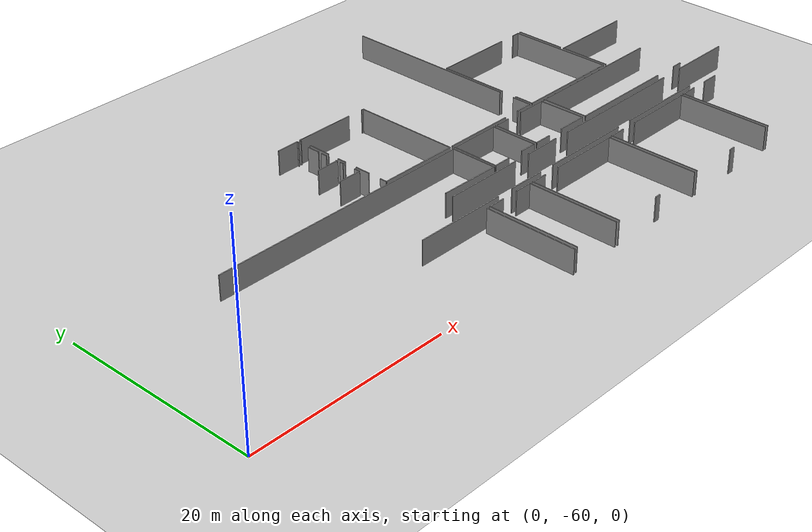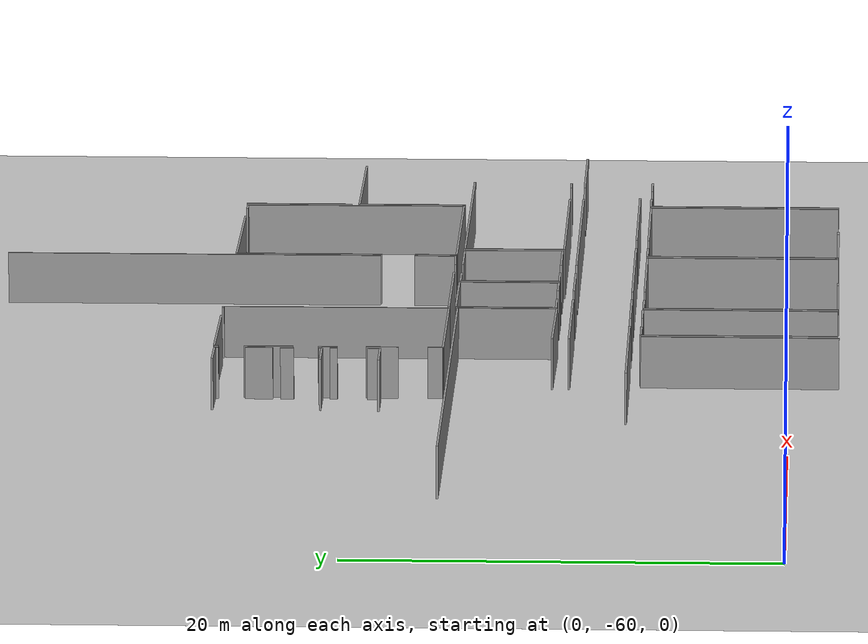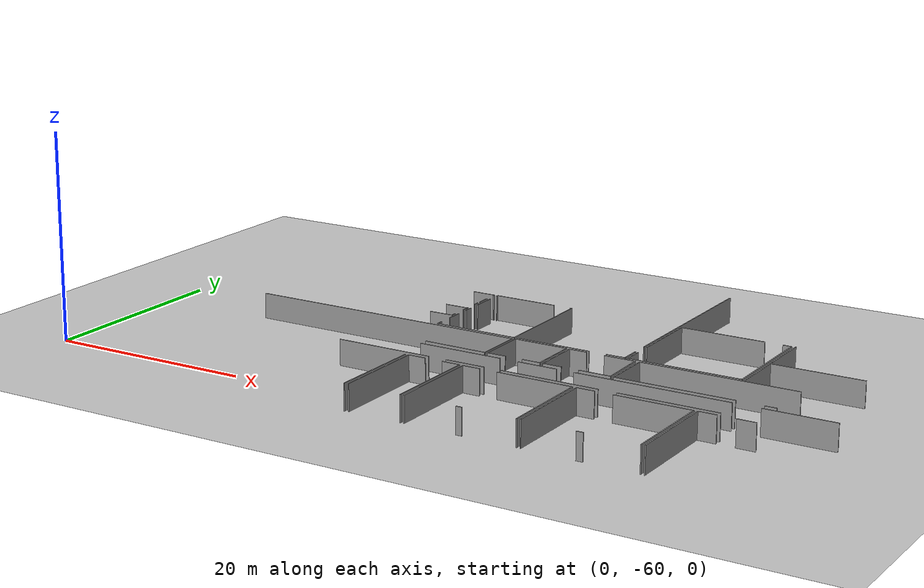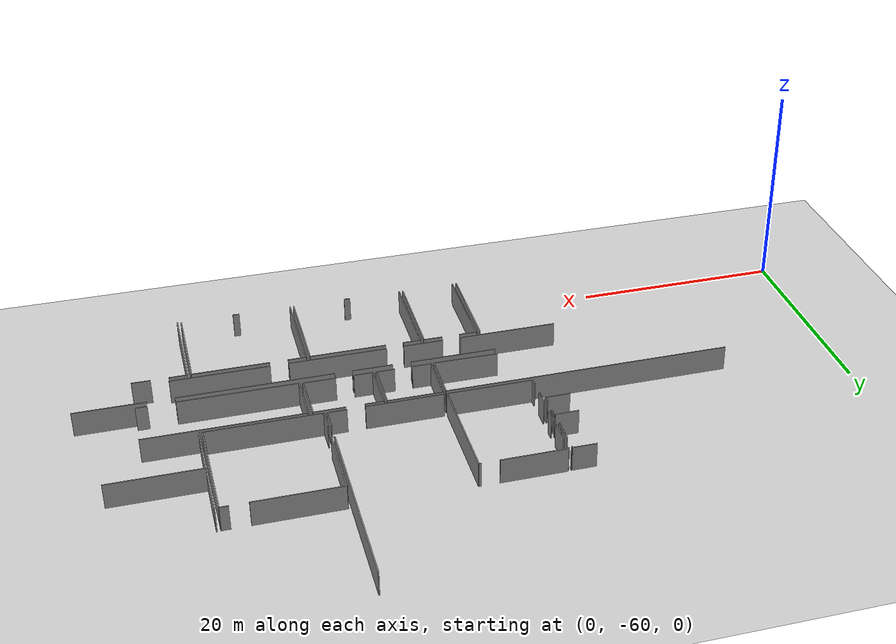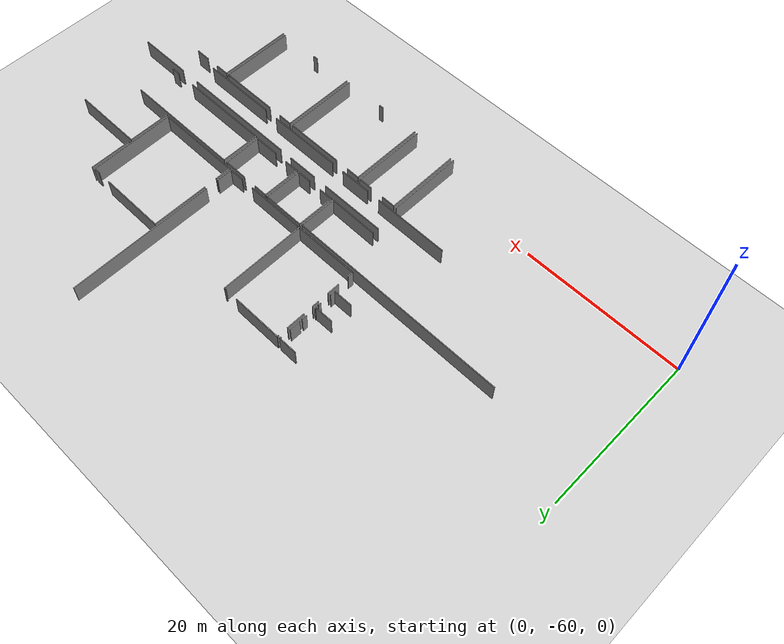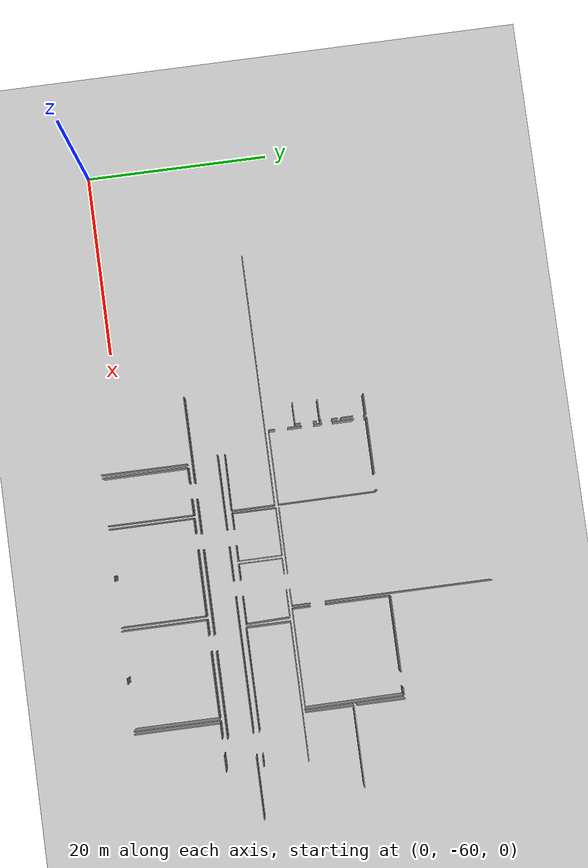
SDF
<sdf version="1.6">
 <world name="default">
  <model name="ground_plane">
   <static>1</static>
   <link name="link">
    <collision name="collision">
     <geometry><plane><normal>0 0 1</normal><size>100 100</size></plane></geometry>
     <surface><friction><ode><mu>100</mu><mu2>50</mu2></ode></friction></surface>
    </collision>
    <visual name="visual">
     <cast_shadows>0</cast_shadows>
     <geometry><plane><normal>0 0 1</normal><size>100 100</size></plane></geometry>
     <material>
      <script><uri>file://media/materials/scripts/gazebo.material</uri><name>Gazebo/Grey</name></script>
     </material>
    </visual>
   </link>
  </model>
  <model name="0510045904_A_40_1_102">
   <static>1</static>
   <link name="Wall_488">
    <collision name="Wall_488_Collision">
     <geometry><box><size>8.20140414133 0.1 2.5</size></box></geometry>
     <pose>4.10070207066 0 1.25 0 0 0</pose>
    </collision>
    <visual name="Wall_488_Visual">
     <pose>4.10070207066 0 1.25 0 0 0</pose>
     <geometry><box><size>8.20140414133 0.1 2.5</size></box></geometry>
     <material>
      <script><uri>file://media/materials/scripts/gazebo.material</uri><name>Gazebo/Grey</name></script>
      <ambient>1 1 1 1</ambient>
     </material>
    </visual>
    <pose>123.418944482 -106.083004304 0 0 0 3.14159265359</pose>
   </link>
   <link name="Wall_489">
    <collision name="Wall_489_Collision">
     <geometry><box><size>0.710957634542 0.1 2.5</size></box></geometry>
     <pose>0.355478817271 0 1.25 0 0 0</pose>
    </collision>
    <visual name="Wall_489_Visual">
     <pose>0.355478817271 0 1.25 0 0 0</pose>
     <geometry><box><size>0.710957634542 0.1 2.5</size></box></geometry>
     <material>
      <script><uri>file://media/materials/scripts/gazebo.material</uri><name>Gazebo/Grey</name></script>
      <ambient>1 1 1 1</ambient>
     </material>
    </visual>
    <pose>115.21754034 -106.083004304 0 0 0 1.57079632679</pose>
   </link>
   <link name="Wall_490">
    <collision name="Wall_490_Collision">
     <geometry><box><size>1.54887198954 0.1 2.5</size></box></geometry>
     <pose>0.774435994769 0 1.25 0 0 0</pose>
    </collision>
    <visual name="Wall_490_Visual">
     <pose>0.774435994769 0 1.25 0 0 0</pose>
     <geometry><box><size>1.54887198954 0.1 2.5</size></box></geometry>
     <material>
      <script><uri>file://media/materials/scripts/gazebo.material</uri><name>Gazebo/Grey</name></script>
      <ambient>1 1 1 1</ambient>
     </material>
    </visual>
    <pose>115.21754034 -103.975522744 0 0 0 1.57079632679</pose>
   </link>
   <link name="Wall_491">
    <collision name="Wall_491_Collision">
     <geometry><box><size>0.905201416837 0.1 2.5</size></box></geometry>
     <pose>0.452600708418 0 1.25 0 0 0</pose>
    </collision>
    <visual name="Wall_491_Visual">
     <pose>0.452600708418 0 1.25 0 0 0</pose>
     <geometry><box><size>0.905201416837 0.1 2.5</size></box></geometry>
     <material>
      <script><uri>file://media/materials/scripts/gazebo.material</uri><name>Gazebo/Grey</name></script>
      <ambient>1 1 1 1</ambient>
     </material>
    </visual>
    <pose>115.21754034 -101.077608643 0 0 0 1.57079632679</pose>
   </link>
   <link name="Wall_492">
    <collision name="Wall_492_Collision">
     <geometry><box><size>2.34032018485 0.1 2.5</size></box></geometry>
     <pose>1.17016009242 0 1.25 0 0 0</pose>
    </collision>
    <visual name="Wall_492_Visual">
     <pose>1.17016009242 0 1.25 0 0 0</pose>
     <geometry><box><size>2.34032018485 0.1 2.5</size></box></geometry>
     <material>
      <script><uri>file://media/materials/scripts/gazebo.material</uri><name>Gazebo/Grey</name></script>
      <ambient>1 1 1 1</ambient>
     </material>
    </visual>
    <pose>115.21754034 -98.9800297079 0 0 0 1.57079632679</pose>
   </link>
   <link name="Wall_493">
    <collision name="Wall_493_Collision">
     <geometry><box><size>0.191958561326 0.1 2.5</size></box></geometry>
     <pose>0.0959792806632 0 1.25 0 0 0</pose>
    </collision>
    <visual name="Wall_493_Visual">
     <pose>0.0959792806632 0 1.25 0 0 0</pose>
     <geometry><box><size>0.191958561326 0.1 2.5</size></box></geometry>
     <material>
      <script><uri>file://media/materials/scripts/gazebo.material</uri><name>Gazebo/Grey</name></script>
      <ambient>1 1 1 1</ambient>
     </material>
    </visual>
    <pose>115.21754034 -95.4214328335 0 0 0 1.57079632679</pose>
   </link>
   <link name="Wall_494">
    <collision name="Wall_494_Collision">
     <geometry><box><size>6.25896631838 0.1 2.5</size></box></geometry>
     <pose>3.12948315919 0 1.25 0 0 0</pose>
    </collision>
    <visual name="Wall_494_Visual">
     <pose>3.12948315919 0 1.25 0 0 0</pose>
     <geometry><box><size>6.25896631838 0.1 2.5</size></box></geometry>
     <material>
      <script><uri>file://media/materials/scripts/gazebo.material</uri><name>Gazebo/Grey</name></script>
      <ambient>1 1 1 1</ambient>
     </material>
    </visual>
    <pose>115.21754034 -95.2294742722 0 0 0 0.0</pose>
   </link>
   <link name="Wall_495">
    <collision name="Wall_495_Collision">
     <geometry><box><size>0.211002069395 0.1 2.5</size></box></geometry>
     <pose>0.105501034697 0 1.25 0 0 0</pose>
    </collision>
    <visual name="Wall_495_Visual">
     <pose>0.105501034697 0 1.25 0 0 0</pose>
     <geometry><box><size>0.211002069395 0.1 2.5</size></box></geometry>
     <material>
      <script><uri>file://media/materials/scripts/gazebo.material</uri><name>Gazebo/Grey</name></script>
      <ambient>1 1 1 1</ambient>
     </material>
    </visual>
    <pose>123.169855396 -95.2294742722 0 0 0 0.0</pose>
   </link>
   <link name="Wall_496">
    <collision name="Wall_496_Collision">
     <geometry><box><size>10.8535968585 0.1 2.5</size></box></geometry>
     <pose>5.42679842927 0 1.25 0 0 0</pose>
    </collision>
    <visual name="Wall_496_Visual">
     <pose>5.42679842927 0 1.25 0 0 0</pose>
     <geometry><box><size>10.8535968585 0.1 2.5</size></box></geometry>
     <material>
      <script><uri>file://media/materials/scripts/gazebo.material</uri><name>Gazebo/Grey</name></script>
      <ambient>1 1 1 1</ambient>
     </material>
    </visual>
    <pose>123.380857466 -95.2294742722 0 0 0 -1.56728715884</pose>
   </link>
   <link name="Wall_499">
    <collision name="Wall_499_Collision">
     <geometry><box><size>0.375284065662 0.1 2.5</size></box></geometry>
     <pose>0.187642032831 0 1.25 0 0 0</pose>
    </collision>
    <visual name="Wall_499_Visual">
     <pose>0.187642032831 0 1.25 0 0 0</pose>
     <geometry><box><size>0.375284065662 0.1 2.5</size></box></geometry>
     <material>
      <script><uri>file://media/materials/scripts/gazebo.material</uri><name>Gazebo/Grey</name></script>
      <ambient>1 1 1 1</ambient>
     </material>
    </visual>
    <pose>114.913859865 -100.724415047 0 0 0 -1.57079632679</pose>
   </link>
   <link name="Wall_500">
    <collision name="Wall_500_Collision">
     <geometry><box><size>0.617517488288 0.1 2.5</size></box></geometry>
     <pose>0.308758744144 0 1.25 0 0 0</pose>
    </collision>
    <visual name="Wall_500_Visual">
     <pose>0.308758744144 0 1.25 0 0 0</pose>
     <geometry><box><size>0.617517488288 0.1 2.5</size></box></geometry>
     <material>
      <script><uri>file://media/materials/scripts/gazebo.material</uri><name>Gazebo/Grey</name></script>
      <ambient>1 1 1 1</ambient>
     </material>
    </visual>
    <pose>114.913859865 -102.496984778 0 0 0 -1.57079632679</pose>
   </link>
   <link name="Wall_501">
    <collision name="Wall_501_Collision">
     <geometry><box><size>2.38455824056 0.1 2.5</size></box></geometry>
     <pose>1.19227912028 0 1.25 0 0 0</pose>
    </collision>
    <visual name="Wall_501_Visual">
     <pose>1.19227912028 0 1.25 0 0 0</pose>
     <geometry><box><size>2.38455824056 0.1 2.5</size></box></geometry>
     <material>
      <script><uri>file://media/materials/scripts/gazebo.material</uri><name>Gazebo/Grey</name></script>
      <ambient>1 1 1 1</ambient>
     </material>
    </visual>
    <pose>114.913859865 -103.114502266 0 0 0 -3.13467124351</pose>
   </link>
   <link name="Wall_507">
    <collision name="Wall_507_Collision">
     <geometry><box><size>1.32466642122 0.1 2.5</size></box></geometry>
     <pose>0.662333210609 0 1.25 0 0 0</pose>
    </collision>
    <visual name="Wall_507_Visual">
     <pose>0.662333210609 0 1.25 0 0 0</pose>
     <geometry><box><size>1.32466642122 0.1 2.5</size></box></geometry>
     <material>
      <script><uri>file://media/materials/scripts/gazebo.material</uri><name>Gazebo/Grey</name></script>
      <ambient>1 1 1 1</ambient>
     </material>
    </visual>
    <pose>114.891769396 -98.0306473523 0 0 0 1.57079632679</pose>
   </link>
   <link name="Wall_508">
    <collision name="Wall_508_Collision">
     <geometry><box><size>0.191958561326 0.1 2.5</size></box></geometry>
     <pose>0.0959792806632 0 1.25 0 0 0</pose>
    </collision>
    <visual name="Wall_508_Visual">
     <pose>0.0959792806632 0 1.25 0 0 0</pose>
     <geometry><box><size>0.191958561326 0.1 2.5</size></box></geometry>
     <material>
      <script><uri>file://media/materials/scripts/gazebo.material</uri><name>Gazebo/Grey</name></script>
      <ambient>1 1 1 1</ambient>
     </material>
    </visual>
    <pose>114.891769396 -95.4597737631 0 0 0 1.57079632679</pose>
   </link>
   <link name="Wall_509">
    <collision name="Wall_509_Collision">
     <geometry><box><size>2.30096360151 0.1 2.5</size></box></geometry>
     <pose>1.15048180075 0 1.25 0 0 0</pose>
    </collision>
    <visual name="Wall_509_Visual">
     <pose>1.15048180075 0 1.25 0 0 0</pose>
     <geometry><box><size>2.30096360151 0.1 2.5</size></box></geometry>
     <material>
      <script><uri>file://media/materials/scripts/gazebo.material</uri><name>Gazebo/Grey</name></script>
      <ambient>1 1 1 1</ambient>
     </material>
    </visual>
    <pose>114.891769396 -95.2678152018 0 0 0 3.14159265359</pose>
   </link>
   <link name="Wall_514">
    <collision name="Wall_514_Collision">
     <geometry><box><size>0.643924486143 0.1 2.5</size></box></geometry>
     <pose>0.321962243071 0 1.25 0 0 0</pose>
    </collision>
    <visual name="Wall_514_Visual">
     <pose>0.321962243071 0 1.25 0 0 0</pose>
     <geometry><box><size>0.643924486143 0.1 2.5</size></box></geometry>
     <material>
      <script><uri>file://media/materials/scripts/gazebo.material</uri><name>Gazebo/Grey</name></script>
      <ambient>1 1 1 1</ambient>
     </material>
    </visual>
    <pose>114.890245915 -98.3871418234 0 0 0 -1.57079632679</pose>
   </link>
   <link name="Wall_515">
    <collision name="Wall_515_Collision">
     <geometry><box><size>0.153617631749 0.1 2.5</size></box></geometry>
     <pose>0.0768088158747 0 1.25 0 0 0</pose>
    </collision>
    <visual name="Wall_515_Visual">
     <pose>0.0768088158747 0 1.25 0 0 0</pose>
     <geometry><box><size>0.153617631749 0.1 2.5</size></box></geometry>
     <material>
      <script><uri>file://media/materials/scripts/gazebo.material</uri><name>Gazebo/Grey</name></script>
      <ambient>1 1 1 1</ambient>
     </material>
    </visual>
    <pose>114.890245915 -100.203384666 0 0 0 -1.57079632679</pose>
   </link>
   <link name="Wall_516">
    <collision name="Wall_516_Collision">
     <geometry><box><size>2.31013663599 0.1 2.5</size></box></geometry>
     <pose>1.155068318 0 1.25 0 0 0</pose>
    </collision>
    <visual name="Wall_516_Visual">
     <pose>1.155068318 0 1.25 0 0 0</pose>
     <geometry><box><size>2.31013663599 0.1 2.5</size></box></geometry>
     <material>
      <script><uri>file://media/materials/scripts/gazebo.material</uri><name>Gazebo/Grey</name></script>
      <ambient>1 1 1 1</ambient>
     </material>
    </visual>
    <pose>114.890245915 -100.357002298 0 0 0 -3.13631681773</pose>
   </link>
   <link name="Wall_542">
    <collision name="Wall_542_Collision">
     <geometry><box><size>2.0148031536 0.1 2.5</size></box></geometry>
     <pose>1.0074015768 0 1.25 0 0 0</pose>
    </collision>
    <visual name="Wall_542_Visual">
     <pose>1.0074015768 0 1.25 0 0 0</pose>
     <geometry><box><size>2.0148031536 0.1 2.5</size></box></geometry>
     <material>
      <script><uri>file://media/materials/scripts/gazebo.material</uri><name>Gazebo/Grey</name></script>
      <ambient>1 1 1 1</ambient>
     </material>
    </visual>
    <pose>134.616527226 -106.02587378 0 0 0 1.57079632679</pose>
   </link>
   <link name="Wall_543">
    <collision name="Wall_543_Collision">
     <geometry><box><size>18.3013190803 0.1 2.5</size></box></geometry>
     <pose>9.15065954016 0 1.25 0 0 0</pose>
    </collision>
    <visual name="Wall_543_Visual">
     <pose>9.15065954016 0 1.25 0 0 0</pose>
     <geometry><box><size>18.3013190803 0.1 2.5</size></box></geometry>
     <material>
      <script><uri>file://media/materials/scripts/gazebo.material</uri><name>Gazebo/Grey</name></script>
      <ambient>1 1 1 1</ambient>
     </material>
    </visual>
    <pose>134.616527226 -102.365711529 0 0 0 1.57079632679</pose>
   </link>
   <link name="Wall_547">
    <collision name="Wall_547_Collision">
     <geometry><box><size>7.35257150837 0.1 2.5</size></box></geometry>
     <pose>3.67628575419 0 1.25 0 0 0</pose>
    </collision>
    <visual name="Wall_547_Visual">
     <pose>3.67628575419 0 1.25 0 0 0</pose>
     <geometry><box><size>7.35257150837 0.1 2.5</size></box></geometry>
     <material>
      <script><uri>file://media/materials/scripts/gazebo.material</uri><name>Gazebo/Grey</name></script>
      <ambient>1 1 1 1</ambient>
     </material>
    </visual>
    <pose>123.723640611 -106.067515584 0 0 0 0.0</pose>
   </link>
   <link name="Wall_548">
    <collision name="Wall_548_Collision">
     <geometry><box><size>1.82865096692 0.1 2.5</size></box></geometry>
     <pose>0.914325483461 0 1.25 0 0 0</pose>
    </collision>
    <visual name="Wall_548_Visual">
     <pose>0.914325483461 0 1.25 0 0 0</pose>
     <geometry><box><size>1.82865096692 0.1 2.5</size></box></geometry>
     <material>
      <script><uri>file://media/materials/scripts/gazebo.material</uri><name>Gazebo/Grey</name></script>
      <ambient>1 1 1 1</ambient>
     </material>
    </visual>
    <pose>132.788350451 -106.067515584 0 0 0 0.0227738397603</pose>
   </link>
   <link name="Wall_549">
    <collision name="Wall_549_Collision">
     <geometry><box><size>3.09774397908 0.1 2.5</size></box></geometry>
     <pose>1.54887198954 0 1.25 0 0 0</pose>
    </collision>
    <visual name="Wall_549_Visual">
     <pose>1.54887198954 0 1.25 0 0 0</pose>
     <geometry><box><size>3.09774397908 0.1 2.5</size></box></geometry>
     <material>
      <script><uri>file://media/materials/scripts/gazebo.material</uri><name>Gazebo/Grey</name></script>
      <ambient>1 1 1 1</ambient>
     </material>
    </visual>
    <pose>135.936877119 -111.237447154 0 0 0 3.14159265359</pose>
   </link>
   <link name="Wall_550">
    <collision name="Wall_550_Collision">
     <geometry><box><size>1.82081328475 0.1 2.5</size></box></geometry>
     <pose>0.910406642376 0 1.25 0 0 0</pose>
    </collision>
    <visual name="Wall_550_Visual">
     <pose>0.910406642376 0 1.25 0 0 0</pose>
     <geometry><box><size>1.82081328475 0.1 2.5</size></box></geometry>
     <material>
      <script><uri>file://media/materials/scripts/gazebo.material</uri><name>Gazebo/Grey</name></script>
      <ambient>1 1 1 1</ambient>
     </material>
    </visual>
    <pose>131.127756548 -111.237447154 0 0 0 3.14159265359</pose>
   </link>
   <link name="Wall_551">
    <collision name="Wall_551_Collision">
     <geometry><box><size>4.79896403316 0.1 2.5</size></box></geometry>
     <pose>2.39948201658 0 1.25 0 0 0</pose>
    </collision>
    <visual name="Wall_551_Visual">
     <pose>2.39948201658 0 1.25 0 0 0</pose>
     <geometry><box><size>4.79896403316 0.1 2.5</size></box></geometry>
     <material>
      <script><uri>file://media/materials/scripts/gazebo.material</uri><name>Gazebo/Grey</name></script>
      <ambient>1 1 1 1</ambient>
     </material>
    </visual>
    <pose>129.306943263 -111.237447154 0 0 0 1.57079632679</pose>
   </link>
   <link name="Wall_552">
    <collision name="Wall_552_Collision">
     <geometry><box><size>1.72940444602 0.1 2.5</size></box></geometry>
     <pose>0.864702223012 0 1.25 0 0 0</pose>
    </collision>
    <visual name="Wall_552_Visual">
     <pose>0.864702223012 0 1.25 0 0 0</pose>
     <geometry><box><size>1.72940444602 0.1 2.5</size></box></geometry>
     <material>
      <script><uri>file://media/materials/scripts/gazebo.material</uri><name>Gazebo/Grey</name></script>
      <ambient>1 1 1 1</ambient>
     </material>
    </visual>
    <pose>129.306943263 -106.438483121 0 0 0 0.0</pose>
   </link>
   <link name="Wall_553">
    <collision name="Wall_553_Collision">
     <geometry><box><size>3.02207777369 0.1 2.5</size></box></geometry>
     <pose>1.51103888684 0 1.25 0 0 0</pose>
    </collision>
    <visual name="Wall_553_Visual">
     <pose>1.51103888684 0 1.25 0 0 0</pose>
     <geometry><box><size>3.02207777369 0.1 2.5</size></box></geometry>
     <material>
      <script><uri>file://media/materials/scripts/gazebo.material</uri><name>Gazebo/Grey</name></script>
      <ambient>1 1 1 1</ambient>
     </material>
    </visual>
    <pose>132.795967855 -106.438483121 0 0 0 0.0</pose>
   </link>
   <link name="Wall_554">
    <collision name="Wall_554_Collision">
     <geometry><box><size>4.80043505473 0.1 2.5</size></box></geometry>
     <pose>2.40021752736 0 1.25 0 0 0</pose>
    </collision>
    <visual name="Wall_554_Visual">
     <pose>2.40021752736 0 1.25 0 0 0</pose>
     <geometry><box><size>4.80043505473 0.1 2.5</size></box></geometry>
     <material>
      <script><uri>file://media/materials/scripts/gazebo.material</uri><name>Gazebo/Grey</name></script>
      <ambient>1 1 1 1</ambient>
     </material>
    </visual>
    <pose>135.818045628 -106.438483121 0 0 0 -1.54603948111</pose>
   </link>
   <link name="Wall_555">
    <collision name="Wall_555_Collision">
     <geometry><box><size>10.8984727107 0.1 2.5</size></box></geometry>
     <pose>5.44923635533 0 1.25 0 0 0</pose>
    </collision>
    <visual name="Wall_555_Visual">
     <pose>5.44923635533 0 1.25 0 0 0</pose>
     <geometry><box><size>10.8984727107 0.1 2.5</size></box></geometry>
     <material>
      <script><uri>file://media/materials/scripts/gazebo.material</uri><name>Gazebo/Grey</name></script>
      <ambient>1 1 1 1</ambient>
     </material>
    </visual>
    <pose>145.809793441 -106.066246017 0 0 0 3.14159265359</pose>
   </link>
   <link name="Wall_556">
    <collision name="Wall_556_Collision">
     <geometry><box><size>2.02165881651 0.1 2.5</size></box></geometry>
     <pose>1.01082940825 0 1.25 0 0 0</pose>
    </collision>
    <visual name="Wall_556_Visual">
     <pose>1.01082940825 0 1.25 0 0 0</pose>
     <geometry><box><size>2.02165881651 0.1 2.5</size></box></geometry>
     <material>
      <script><uri>file://media/materials/scripts/gazebo.material</uri><name>Gazebo/Grey</name></script>
      <ambient>1 1 1 1</ambient>
     </material>
    </visual>
    <pose>134.911320731 -106.066246017 0 0 0 1.57079632679</pose>
   </link>
   <link name="Wall_557">
    <collision name="Wall_557_Collision">
     <geometry><box><size>7.13141290134 0.1 2.5</size></box></geometry>
     <pose>3.56570645067 0 1.25 0 0 0</pose>
    </collision>
    <visual name="Wall_557_Visual">
     <pose>3.56570645067 0 1.25 0 0 0</pose>
     <geometry><box><size>7.13141290134 0.1 2.5</size></box></geometry>
     <material>
      <script><uri>file://media/materials/scripts/gazebo.material</uri><name>Gazebo/Grey</name></script>
      <ambient>1 1 1 1</ambient>
     </material>
    </visual>
    <pose>134.911320731 -102.399228103 0 0 0 1.57079632679</pose>
   </link>
   <link name="Wall_558">
    <collision name="Wall_558_Collision">
     <geometry><box><size>8.26437467467 0.1 2.5</size></box></geometry>
     <pose>4.13218733734 0 1.25 0 0 0</pose>
    </collision>
    <visual name="Wall_558_Visual">
     <pose>4.13218733734 0 1.25 0 0 0</pose>
     <geometry><box><size>8.26437467467 0.1 2.5</size></box></geometry>
     <material>
      <script><uri>file://media/materials/scripts/gazebo.material</uri><name>Gazebo/Grey</name></script>
      <ambient>1 1 1 1</ambient>
     </material>
    </visual>
    <pose>134.911320731 -95.2678152018 0 0 0 0.0</pose>
   </link>
   <link name="Wall_559">
    <collision name="Wall_559_Collision">
     <geometry><box><size>0.817093452842 0.1 2.5</size></box></geometry>
     <pose>0.408546726421 0 1.25 0 0 0</pose>
    </collision>
    <visual name="Wall_559_Visual">
     <pose>0.408546726421 0 1.25 0 0 0</pose>
     <geometry><box><size>0.817093452842 0.1 2.5</size></box></geometry>
     <material>
      <script><uri>file://media/materials/scripts/gazebo.material</uri><name>Gazebo/Grey</name></script>
      <ambient>1 1 1 1</ambient>
     </material>
    </visual>
    <pose>144.897736362 -95.2678152018 0 0 0 0.0</pose>
   </link>
   <link name="Wall_560">
    <collision name="Wall_560_Collision">
     <geometry><box><size>10.7988483717 0.1 2.5</size></box></geometry>
     <pose>5.39942418586 0 1.25 0 0 0</pose>
    </collision>
    <visual name="Wall_560_Visual">
     <pose>5.39942418586 0 1.25 0 0 0</pose>
     <geometry><box><size>10.7988483717 0.1 2.5</size></box></geometry>
     <material>
      <script><uri>file://media/materials/scripts/gazebo.material</uri><name>Gazebo/Grey</name></script>
      <ambient>1 1 1 1</ambient>
     </material>
    </visual>
    <pose>145.714829815 -95.2678152018 0 0 0 -1.56200234732</pose>
   </link>
   <link name="Wall_587">
    <collision name="Wall_587_Collision">
     <geometry><box><size>5.27987609024 0.1 2.5</size></box></geometry>
     <pose>2.63993804512 0 1.25 0 0 0</pose>
    </collision>
    <visual name="Wall_587_Visual">
     <pose>2.63993804512 0 1.25 0 0 0</pose>
     <geometry><box><size>5.27987609024 0.1 2.5</size></box></geometry>
     <material>
      <script><uri>file://media/materials/scripts/gazebo.material</uri><name>Gazebo/Grey</name></script>
      <ambient>1 1 1 1</ambient>
     </material>
    </visual>
    <pose>146.093922582 -100.471009433 0 0 0 1.57079632679</pose>
   </link>
   <link name="Wall_602">
    <collision name="Wall_602_Collision">
     <geometry><box><size>5.31517005853 0.1 2.5</size></box></geometry>
     <pose>2.65758502926 0 1.25 0 0 0</pose>
    </collision>
    <visual name="Wall_602_Visual">
     <pose>2.65758502926 0 1.25 0 0 0</pose>
     <geometry><box><size>5.31517005853 0.1 2.5</size></box></geometry>
     <material>
      <script><uri>file://media/materials/scripts/gazebo.material</uri><name>Gazebo/Grey</name></script>
      <ambient>1 1 1 1</ambient>
     </material>
    </visual>
    <pose>146.121345233 -106.143435703 0 0 0 1.57079632679</pose>
   </link>
   <link name="Wall_603">
    <collision name="Wall_603_Collision">
     <geometry><box><size>8.78921375703 0.1 2.5</size></box></geometry>
     <pose>4.39460687852 0 1.25 0 0 0</pose>
    </collision>
    <visual name="Wall_603_Visual">
     <pose>4.39460687852 0 1.25 0 0 0</pose>
     <geometry><box><size>8.78921375703 0.1 2.5</size></box></geometry>
     <material>
      <script><uri>file://media/materials/scripts/gazebo.material</uri><name>Gazebo/Grey</name></script>
      <ambient>1 1 1 1</ambient>
     </material>
    </visual>
    <pose>146.121345233 -100.828265644 0 0 0 0.0</pose>
   </link>
   <link name="Wall_659">
    <collision name="Wall_659_Collision">
     <geometry><box><size>8.2608198865 0.1 2.5</size></box></geometry>
     <pose>4.13040994325 0 1.25 0 0 0</pose>
    </collision>
    <visual name="Wall_659_Visual">
     <pose>4.13040994325 0 1.25 0 0 0</pose>
     <geometry><box><size>8.2608198865 0.1 2.5</size></box></geometry>
     <material>
      <script><uri>file://media/materials/scripts/gazebo.material</uri><name>Gazebo/Grey</name></script>
      <ambient>1 1 1 1</ambient>
     </material>
    </visual>
    <pose>117.181052979 -112.001472698 0 0 0 0.0</pose>
   </link>
   <link name="Wall_660">
    <collision name="Wall_660_Collision">
     <geometry><box><size>3.8594843018 0.1 2.5</size></box></geometry>
     <pose>1.9297421509 0 1.25 0 0 0</pose>
    </collision>
    <visual name="Wall_660_Visual">
     <pose>1.9297421509 0 1.25 0 0 0</pose>
     <geometry><box><size>3.8594843018 0.1 2.5</size></box></geometry>
     <material>
      <script><uri>file://media/materials/scripts/gazebo.material</uri><name>Gazebo/Grey</name></script>
      <ambient>1 1 1 1</ambient>
     </material>
    </visual>
    <pose>127.25303744 -112.001472698 0 0 0 0.0</pose>
   </link>
   <link name="Wall_661">
    <collision name="Wall_661_Collision">
     <geometry><box><size>14.828544949 0.1 2.5</size></box></geometry>
     <pose>7.41427247451 0 1.25 0 0 0</pose>
    </collision>
    <visual name="Wall_661_Visual">
     <pose>7.41427247451 0 1.25 0 0 0</pose>
     <geometry><box><size>14.828544949 0.1 2.5</size></box></geometry>
     <material>
      <script><uri>file://media/materials/scripts/gazebo.material</uri><name>Gazebo/Grey</name></script>
      <ambient>1 1 1 1</ambient>
     </material>
    </visual>
    <pose>132.788350451 -112.001472698 0 0 0 0.0</pose>
   </link>
   <link name="Wall_662">
    <collision name="Wall_662_Collision">
     <geometry><box><size>6.74495664428 0.1 2.5</size></box></geometry>
     <pose>3.37247832214 0 1.25 0 0 0</pose>
    </collision>
    <visual name="Wall_662_Visual">
     <pose>3.37247832214 0 1.25 0 0 0</pose>
     <geometry><box><size>6.74495664428 0.1 2.5</size></box></geometry>
     <material>
      <script><uri>file://media/materials/scripts/gazebo.material</uri><name>Gazebo/Grey</name></script>
      <ambient>1 1 1 1</ambient>
     </material>
    </visual>
    <pose>150.206812498 -112.001472698 0 0 0 0.0</pose>
   </link>
   <link name="Wall_666">
    <collision name="Wall_666_Collision">
     <geometry><box><size>9.46767047114 0.1 2.5</size></box></geometry>
     <pose>4.73383523557 0 1.25 0 0 0</pose>
    </collision>
    <visual name="Wall_666_Visual">
     <pose>4.73383523557 0 1.25 0 0 0</pose>
     <geometry><box><size>9.46767047114 0.1 2.5</size></box></geometry>
     <material>
      <script><uri>file://media/materials/scripts/gazebo.material</uri><name>Gazebo/Grey</name></script>
      <ambient>1 1 1 1</ambient>
     </material>
    </visual>
    <pose>147.896200185 -114.833115391 0 0 0 3.14159265359</pose>
   </link>
   <link name="Wall_667">
    <collision name="Wall_667_Collision">
     <geometry><box><size>9.46233828888 0.1 2.5</size></box></geometry>
     <pose>4.73116914444 0 1.25 0 0 0</pose>
    </collision>
    <visual name="Wall_667_Visual">
     <pose>4.73116914444 0 1.25 0 0 0</pose>
     <geometry><box><size>9.46233828888 0.1 2.5</size></box></geometry>
     <material>
      <script><uri>file://media/materials/scripts/gazebo.material</uri><name>Gazebo/Grey</name></script>
      <ambient>1 1 1 1</ambient>
     </material>
    </visual>
    <pose>136.650119974 -114.833115391 0 0 0 3.14159265359</pose>
   </link>
   <link name="Wall_668">
    <collision name="Wall_668_Collision">
     <geometry><box><size>3.88589129966 0.1 2.5</size></box></geometry>
     <pose>1.94294564983 0 1.25 0 0 0</pose>
    </collision>
    <visual name="Wall_668_Visual">
     <pose>1.94294564983 0 1.25 0 0 0</pose>
     <geometry><box><size>3.88589129966 0.1 2.5</size></box></geometry>
     <material>
      <script><uri>file://media/materials/scripts/gazebo.material</uri><name>Gazebo/Grey</name></script>
      <ambient>1 1 1 1</ambient>
     </material>
    </visual>
    <pose>125.511952975 -114.833115391 0 0 0 3.14159265359</pose>
   </link>
   <link name="Wall_669">
    <collision name="Wall_669_Collision">
     <geometry><box><size>9.49966356469 0.1 2.5</size></box></geometry>
     <pose>4.74983178235 0 1.25 0 0 0</pose>
    </collision>
    <visual name="Wall_669_Visual">
     <pose>4.74983178235 0 1.25 0 0 0</pose>
     <geometry><box><size>9.49966356469 0.1 2.5</size></box></geometry>
     <material>
      <script><uri>file://media/materials/scripts/gazebo.material</uri><name>Gazebo/Grey</name></script>
      <ambient>1 1 1 1</ambient>
     </material>
    </visual>
    <pose>119.855015425 -114.833115391 0 0 0 3.14159265359</pose>
   </link>
   <link name="Wall_684">
    <collision name="Wall_684_Collision">
     <geometry><box><size>1.11010956365 0.1 2.5</size></box></geometry>
     <pose>0.555054781825 0 1.25 0 0 0</pose>
    </collision>
    <visual name="Wall_684_Visual">
     <pose>0.555054781825 0 1.25 0 0 0</pose>
     <geometry><box><size>1.11010956365 0.1 2.5</size></box></geometry>
     <material>
      <script><uri>file://media/materials/scripts/gazebo.material</uri><name>Gazebo/Grey</name></script>
      <ambient>1 1 1 1</ambient>
     </material>
    </visual>
    <pose>151.28949941 -111.316160321 0 0 0 3.14159265359</pose>
   </link>
   <link name="Wall_685">
    <collision name="Wall_685_Collision">
     <geometry><box><size>11.3296177333 0.1 2.5</size></box></geometry>
     <pose>5.66480886666 0 1.25 0 0 0</pose>
    </collision>
    <visual name="Wall_685_Visual">
     <pose>5.66480886666 0 1.25 0 0 0</pose>
     <geometry><box><size>11.3296177333 0.1 2.5</size></box></geometry>
     <material>
      <script><uri>file://media/materials/scripts/gazebo.material</uri><name>Gazebo/Grey</name></script>
      <ambient>1 1 1 1</ambient>
     </material>
    </visual>
    <pose>147.610547564 -111.316160321 0 0 0 3.14159265359</pose>
   </link>
   <link name="Wall_686">
    <collision name="Wall_686_Collision">
     <geometry><box><size>4.88148590146 0.1 2.5</size></box></geometry>
     <pose>2.44074295073 0 1.25 0 0 0</pose>
    </collision>
    <visual name="Wall_686_Visual">
     <pose>2.44074295073 0 1.25 0 0 0</pose>
     <geometry><box><size>4.88148590146 0.1 2.5</size></box></geometry>
     <material>
      <script><uri>file://media/materials/scripts/gazebo.material</uri><name>Gazebo/Grey</name></script>
      <ambient>1 1 1 1</ambient>
     </material>
    </visual>
    <pose>136.280929831 -111.316160321 0 0 0 1.57079632679</pose>
   </link>
   <link name="Wall_687">
    <collision name="Wall_687_Collision">
     <geometry><box><size>15.0672235835 0.1 2.5</size></box></geometry>
     <pose>7.53361179174 0 1.25 0 0 0</pose>
    </collision>
    <visual name="Wall_687_Visual">
     <pose>7.53361179174 0 1.25 0 0 0</pose>
     <geometry><box><size>15.0672235835 0.1 2.5</size></box></geometry>
     <material>
      <script><uri>file://media/materials/scripts/gazebo.material</uri><name>Gazebo/Grey</name></script>
      <ambient>1 1 1 1</ambient>
     </material>
    </visual>
    <pose>136.280929831 -106.434674419 0 0 0 0.0</pose>
   </link>
   <link name="Wall_689">
    <collision name="Wall_689_Collision">
     <geometry><box><size>1.81040283367 0.1 2.5</size></box></geometry>
     <pose>0.905201416837 0 1.25 0 0 0</pose>
    </collision>
    <visual name="Wall_689_Visual">
     <pose>0.905201416837 0 1.25 0 0 0</pose>
     <geometry><box><size>1.81040283367 0.1 2.5</size></box></geometry>
     <material>
      <script><uri>file://media/materials/scripts/gazebo.material</uri><name>Gazebo/Grey</name></script>
      <ambient>1 1 1 1</ambient>
     </material>
    </visual>
    <pose>123.695710132 -111.223481915 0 0 0 0.0</pose>
   </link>
   <link name="Wall_690">
    <collision name="Wall_690_Collision">
     <geometry><box><size>1.75200274227 0.1 2.5</size></box></geometry>
     <pose>0.876001371133 0 1.25 0 0 0</pose>
    </collision>
    <visual name="Wall_690_Visual">
     <pose>0.876001371133 0 1.25 0 0 0</pose>
     <geometry><box><size>1.75200274227 0.1 2.5</size></box></geometry>
     <material>
      <script><uri>file://media/materials/scripts/gazebo.material</uri><name>Gazebo/Grey</name></script>
      <ambient>1 1 1 1</ambient>
     </material>
    </visual>
    <pose>127.228915663 -111.223481915 0 0 0 0.0</pose>
   </link>
   <link name="Wall_691">
    <collision name="Wall_691_Collision">
     <geometry><box><size>4.81800754123 0.1 2.5</size></box></geometry>
     <pose>2.40900377061 0 1.25 0 0 0</pose>
    </collision>
    <visual name="Wall_691_Visual">
     <pose>2.40900377061 0 1.25 0 0 0</pose>
     <geometry><box><size>4.81800754123 0.1 2.5</size></box></geometry>
     <material>
      <script><uri>file://media/materials/scripts/gazebo.material</uri><name>Gazebo/Grey</name></script>
      <ambient>1 1 1 1</ambient>
     </material>
    </visual>
    <pose>128.980918405 -111.223481915 0 0 0 1.57079632679</pose>
   </link>
   <link name="Wall_692">
    <collision name="Wall_692_Collision">
     <geometry><box><size>5.2560082268 0.1 2.5</size></box></geometry>
     <pose>2.6280041134 0 1.25 0 0 0</pose>
    </collision>
    <visual name="Wall_692_Visual">
     <pose>2.6280041134 0 1.25 0 0 0</pose>
     <geometry><box><size>5.2560082268 0.1 2.5</size></box></geometry>
     <material>
      <script><uri>file://media/materials/scripts/gazebo.material</uri><name>Gazebo/Grey</name></script>
      <ambient>1 1 1 1</ambient>
     </material>
    </visual>
    <pose>128.980918405 -106.405474374 0 0 0 3.14159265359</pose>
   </link>
   <link name="Wall_693">
    <collision name="Wall_693_Collision">
     <geometry><box><size>4.8180960254 0.1 2.5</size></box></geometry>
     <pose>2.4090480127 0 1.25 0 0 0</pose>
    </collision>
    <visual name="Wall_693_Visual">
     <pose>2.4090480127 0 1.25 0 0 0</pose>
     <geometry><box><size>4.8180960254 0.1 2.5</size></box></geometry>
     <material>
      <script><uri>file://media/materials/scripts/gazebo.material</uri><name>Gazebo/Grey</name></script>
      <ambient>1 1 1 1</ambient>
     </material>
    </visual>
    <pose>123.724910178 -106.405474374 0 0 0 -1.57685685865</pose>
   </link>
   <link name="Wall_694">
    <collision name="Wall_694_Collision">
     <geometry><box><size>4.76849442025 0.1 2.5</size></box></geometry>
     <pose>2.38424721013 0 1.25 0 0 0</pose>
    </collision>
    <visual name="Wall_694_Visual">
     <pose>2.38424721013 0 1.25 0 0 0</pose>
     <geometry><box><size>4.76849442025 0.1 2.5</size></box></geometry>
     <material>
      <script><uri>file://media/materials/scripts/gazebo.material</uri><name>Gazebo/Grey</name></script>
      <ambient>1 1 1 1</ambient>
     </material>
    </visual>
    <pose>123.427069712 -111.264361979 0 0 0 1.57079632679</pose>
   </link>
   <link name="Wall_695">
    <collision name="Wall_695_Collision">
     <geometry><box><size>27.7034798837 0.1 2.5</size></box></geometry>
     <pose>13.8517399419 0 1.25 0 0 0</pose>
    </collision>
    <visual name="Wall_695_Visual">
     <pose>13.8517399419 0 1.25 0 0 0</pose>
     <geometry><box><size>27.7034798837 0.1 2.5</size></box></geometry>
     <material>
      <script><uri>file://media/materials/scripts/gazebo.material</uri><name>Gazebo/Grey</name></script>
      <ambient>1 1 1 1</ambient>
     </material>
    </visual>
    <pose>123.427069712 -106.495867559 0 0 0 3.14159265359</pose>
   </link>
   <link name="Wall_699">
    <collision name="Wall_699_Collision">
     <geometry><box><size>6.22936794649 0.1 2.5</size></box></geometry>
     <pose>3.11468397325 0 1.25 0 0 0</pose>
    </collision>
    <visual name="Wall_699_Visual">
     <pose>3.11468397325 0 1.25 0 0 0</pose>
     <geometry><box><size>6.22936794649 0.1 2.5</size></box></geometry>
     <material>
      <script><uri>file://media/materials/scripts/gazebo.material</uri><name>Gazebo/Grey</name></script>
      <ambient>1 1 1 1</ambient>
     </material>
    </visual>
    <pose>117.19806518 -111.197074917 0 0 0 -0.0108017973785</pose>
   </link>
   <link name="Wall_794">
    <collision name="Wall_794_Collision">
     <geometry><box><size>9.43903686041 0.1 2.5</size></box></geometry>
     <pose>4.71951843021 0 1.25 0 0 0</pose>
    </collision>
    <visual name="Wall_794_Visual">
     <pose>4.71951843021 0 1.25 0 0 0</pose>
     <geometry><box><size>9.43903686041 0.1 2.5</size></box></geometry>
     <material>
      <script><uri>file://media/materials/scripts/gazebo.material</uri><name>Gazebo/Grey</name></script>
      <ambient>1 1 1 1</ambient>
     </material>
    </visual>
    <pose>117.751342567 -115.396041489 0 0 0 -1.57432028057</pose>
   </link>
   <link name="Wall_795">
    <collision name="Wall_795_Collision">
     <geometry><box><size>9.36001117219 0.1 2.5</size></box></geometry>
     <pose>4.6800055861 0 1.25 0 0 0</pose>
    </collision>
    <visual name="Wall_795_Visual">
     <pose>4.6800055861 0 1.25 0 0 0</pose>
     <geometry><box><size>9.36001117219 0.1 2.5</size></box></geometry>
     <material>
      <script><uri>file://media/materials/scripts/gazebo.material</uri><name>Gazebo/Grey</name></script>
      <ambient>1 1 1 1</ambient>
     </material>
    </visual>
    <pose>118.111391827 -124.762400498 0 0 0 1.57079632679</pose>
   </link>
   <link name="Wall_796">
    <collision name="Wall_796_Collision">
     <geometry><box><size>1.72686531162 0.1 2.5</size></box></geometry>
     <pose>0.863432655808 0 1.25 0 0 0</pose>
    </collision>
    <visual name="Wall_796_Visual">
     <pose>0.863432655808 0 1.25 0 0 0</pose>
     <geometry><box><size>1.72686531162 0.1 2.5</size></box></geometry>
     <material>
      <script><uri>file://media/materials/scripts/gazebo.material</uri><name>Gazebo/Grey</name></script>
      <ambient>1 1 1 1</ambient>
     </material>
    </visual>
    <pose>118.111391827 -115.402389325 0 0 0 0.0</pose>
   </link>
   <link name="Wall_797">
    <collision name="Wall_797_Collision">
     <geometry><box><size>1.7999923826 0.1 2.5</size></box></geometry>
     <pose>0.899996191298 0 1.25 0 0 0</pose>
    </collision>
    <visual name="Wall_797_Visual">
     <pose>0.899996191298 0 1.25 0 0 0</pose>
     <geometry><box><size>1.7999923826 0.1 2.5</size></box></geometry>
     <material>
      <script><uri>file://media/materials/scripts/gazebo.material</uri><name>Gazebo/Grey</name></script>
      <ambient>1 1 1 1</ambient>
     </material>
    </visual>
    <pose>121.56664593 -115.402389325 0 0 0 0.0</pose>
   </link>
   <link name="Wall_798">
    <collision name="Wall_798_Collision">
     <geometry><box><size>9.3600559305 0.1 2.5</size></box></geometry>
     <pose>4.68002796525 0 1.25 0 0 0</pose>
    </collision>
    <visual name="Wall_798_Visual">
     <pose>4.68002796525 0 1.25 0 0 0</pose>
     <geometry><box><size>9.3600559305 0.1 2.5</size></box></geometry>
     <material>
      <script><uri>file://media/materials/scripts/gazebo.material</uri><name>Gazebo/Grey</name></script>
      <ambient>1 1 1 1</ambient>
     </material>
    </visual>
    <pose>123.366638313 -115.402389325 0 0 0 -1.57388884874</pose>
   </link>
   <link name="Wall_799">
    <collision name="Wall_799_Collision">
     <geometry><box><size>0.595173105488 0.1 2.5</size></box></geometry>
     <pose>0.297586552744 0 1.25 0 0 0</pose>
    </collision>
    <visual name="Wall_799_Visual">
     <pose>0.297586552744 0 1.25 0 0 0</pose>
     <geometry><box><size>0.595173105488 0.1 2.5</size></box></geometry>
     <material>
      <script><uri>file://media/materials/scripts/gazebo.material</uri><name>Gazebo/Grey</name></script>
      <ambient>1 1 1 1</ambient>
     </material>
    </visual>
    <pose>129.405969505 -124.771033555 0 0 0 3.14159265359</pose>
   </link>
   <link name="Wall_800">
    <collision name="Wall_800_Collision">
     <geometry><box><size>9.34198331789 0.1 2.5</size></box></geometry>
     <pose>4.67099165894 0 1.25 0 0 0</pose>
    </collision>
    <visual name="Wall_800_Visual">
     <pose>4.67099165894 0 1.25 0 0 0</pose>
     <geometry><box><size>9.34198331789 0.1 2.5</size></box></geometry>
     <material>
      <script><uri>file://media/materials/scripts/gazebo.material</uri><name>Gazebo/Grey</name></script>
      <ambient>1 1 1 1</ambient>
     </material>
    </visual>
    <pose>123.715007554 -124.771033555 0 0 0 1.57079632679</pose>
   </link>
   <link name="Wall_801">
    <collision name="Wall_801_Collision">
     <geometry><box><size>1.70528266914 0.1 2.5</size></box></geometry>
     <pose>0.852641334569 0 1.25 0 0 0</pose>
    </collision>
    <visual name="Wall_801_Visual">
     <pose>0.852641334569 0 1.25 0 0 0</pose>
     <geometry><box><size>1.70528266914 0.1 2.5</size></box></geometry>
     <material>
      <script><uri>file://media/materials/scripts/gazebo.material</uri><name>Gazebo/Grey</name></script>
      <ambient>1 1 1 1</ambient>
     </material>
    </visual>
    <pose>123.715007554 -115.429050237 0 0 0 0.0</pose>
   </link>
   <link name="Wall_802">
    <collision name="Wall_802_Collision">
     <geometry><box><size>7.3502862874 0.1 2.5</size></box></geometry>
     <pose>3.6751431437 0 1.25 0 0 0</pose>
    </collision>
    <visual name="Wall_802_Visual">
     <pose>3.6751431437 0 1.25 0 0 0</pose>
     <geometry><box><size>7.3502862874 0.1 2.5</size></box></geometry>
     <material>
      <script><uri>file://media/materials/scripts/gazebo.material</uri><name>Gazebo/Grey</name></script>
      <ambient>1 1 1 1</ambient>
     </material>
    </visual>
    <pose>127.170261658 -115.429050237 0 0 0 0.0</pose>
   </link>
   <link name="Wall_803">
    <collision name="Wall_803_Collision">
     <geometry><box><size>9.34200431169 0.1 2.5</size></box></geometry>
     <pose>4.67100215584 0 1.25 0 0 0</pose>
    </collision>
    <visual name="Wall_803_Visual">
     <pose>4.67100215584 0 1.25 0 0 0</pose>
     <geometry><box><size>9.34200431169 0.1 2.5</size></box></geometry>
     <material>
      <script><uri>file://media/materials/scripts/gazebo.material</uri><name>Gazebo/Grey</name></script>
      <ambient>1 1 1 1</ambient>
     </material>
    </visual>
    <pose>134.520547945 -115.429050237 0 0 0 -1.56867630388</pose>
   </link>
   <link name="Wall_804">
    <collision name="Wall_804_Collision">
     <geometry><box><size>0.631228814097 0.1 2.5</size></box></geometry>
     <pose>0.315614407049 0 1.25 0 0 0</pose>
    </collision>
    <visual name="Wall_804_Visual">
     <pose>0.315614407049 0 1.25 0 0 0</pose>
     <geometry><box><size>0.631228814097 0.1 2.5</size></box></geometry>
     <material>
      <script><uri>file://media/materials/scripts/gazebo.material</uri><name>Gazebo/Grey</name></script>
      <ambient>1 1 1 1</ambient>
     </material>
    </visual>
    <pose>140.643162746 -124.768240507 0 0 0 3.14159265359</pose>
   </link>
   <link name="Wall_805">
    <collision name="Wall_805_Collision">
     <geometry><box><size>9.350108548 0.1 2.5</size></box></geometry>
     <pose>4.675054274 0 1.25 0 0 0</pose>
    </collision>
    <visual name="Wall_805_Visual">
     <pose>4.675054274 0 1.25 0 0 0</pose>
     <geometry><box><size>9.350108548 0.1 2.5</size></box></geometry>
     <material>
      <script><uri>file://media/materials/scripts/gazebo.material</uri><name>Gazebo/Grey</name></script>
      <ambient>1 1 1 1</ambient>
     </material>
    </visual>
    <pose>134.912082471 -124.768240507 0 0 0 1.57079632679</pose>
   </link>
   <link name="Wall_806">
    <collision name="Wall_806_Collision">
     <geometry><box><size>1.72711922506 0.1 2.5</size></box></geometry>
     <pose>0.863559612528 0 1.25 0 0 0</pose>
    </collision>
    <visual name="Wall_806_Visual">
     <pose>0.863559612528 0 1.25 0 0 0</pose>
     <geometry><box><size>1.72711922506 0.1 2.5</size></box></geometry>
     <material>
      <script><uri>file://media/materials/scripts/gazebo.material</uri><name>Gazebo/Grey</name></script>
      <ambient>1 1 1 1</ambient>
     </material>
    </visual>
    <pose>134.912082471 -115.418131959 0 0 0 0.0</pose>
   </link>
   <link name="Wall_807">
    <collision name="Wall_807_Collision">
     <geometry><box><size>7.37923241967 0.1 2.5</size></box></geometry>
     <pose>3.68961620983 0 1.25 0 0 0</pose>
    </collision>
    <visual name="Wall_807_Visual">
     <pose>3.68961620983 0 1.25 0 0 0</pose>
     <geometry><box><size>7.37923241967 0.1 2.5</size></box></geometry>
     <material>
      <script><uri>file://media/materials/scripts/gazebo.material</uri><name>Gazebo/Grey</name></script>
      <ambient>1 1 1 1</ambient>
     </material>
    </visual>
    <pose>138.369875709 -115.418131959 0 0 0 0.0</pose>
   </link>
   <link name="Wall_808">
    <collision name="Wall_808_Collision">
     <geometry><box><size>9.35012311436 0.1 2.5</size></box></geometry>
     <pose>4.67506155718 0 1.25 0 0 0</pose>
    </collision>
    <visual name="Wall_808_Visual">
     <pose>4.67506155718 0 1.25 0 0 0</pose>
     <geometry><box><size>9.35012311436 0.1 2.5</size></box></geometry>
     <material>
      <script><uri>file://media/materials/scripts/gazebo.material</uri><name>Gazebo/Grey</name></script>
      <ambient>1 1 1 1</ambient>
     </material>
    </visual>
    <pose>145.749108129 -115.418131959 0 0 0 -1.57256147812</pose>
   </link>
   <link name="Wall_809">
    <collision name="Wall_809_Collision">
     <geometry><box><size>9.38260946843 0.1 2.5</size></box></geometry>
     <pose>4.69130473422 0 1.25 0 0 0</pose>
    </collision>
    <visual name="Wall_809_Visual">
     <pose>4.69130473422 0 1.25 0 0 0</pose>
     <geometry><box><size>9.38260946843 0.1 2.5</size></box></geometry>
     <material>
      <script><uri>file://media/materials/scripts/gazebo.material</uri><name>Gazebo/Grey</name></script>
      <ambient>1 1 1 1</ambient>
     </material>
    </visual>
    <pose>146.099762591 -124.784998794 0 0 0 1.57079632679</pose>
   </link>
   <link name="Wall_810">
    <collision name="Wall_810_Collision">
     <geometry><box><size>1.73626010893 0.1 2.5</size></box></geometry>
     <pose>0.868130054464 0 1.25 0 0 0</pose>
    </collision>
    <visual name="Wall_810_Visual">
     <pose>0.868130054464 0 1.25 0 0 0</pose>
     <geometry><box><size>1.73626010893 0.1 2.5</size></box></geometry>
     <material>
      <script><uri>file://media/materials/scripts/gazebo.material</uri><name>Gazebo/Grey</name></script>
      <ambient>1 1 1 1</ambient>
     </material>
    </visual>
    <pose>146.099762591 -115.402389325 0 0 0 0.0</pose>
   </link>
   <link name="Wall_811">
    <collision name="Wall_811_Collision">
     <geometry><box><size>1.78018713421 0.1 2.5</size></box></geometry>
     <pose>0.890093567103 0 1.25 0 0 0</pose>
    </collision>
    <visual name="Wall_811_Visual">
     <pose>0.890093567103 0 1.25 0 0 0</pose>
     <geometry><box><size>1.78018713421 0.1 2.5</size></box></geometry>
     <material>
      <script><uri>file://media/materials/scripts/gazebo.material</uri><name>Gazebo/Grey</name></script>
      <ambient>1 1 1 1</ambient>
     </material>
    </visual>
    <pose>149.543082763 -115.402389325 0 0 0 0.0</pose>
   </link>
   <pose>-84.3 62.4479902751 0 0 0 0</pose>
  </model>
 </world>
</sdf>
